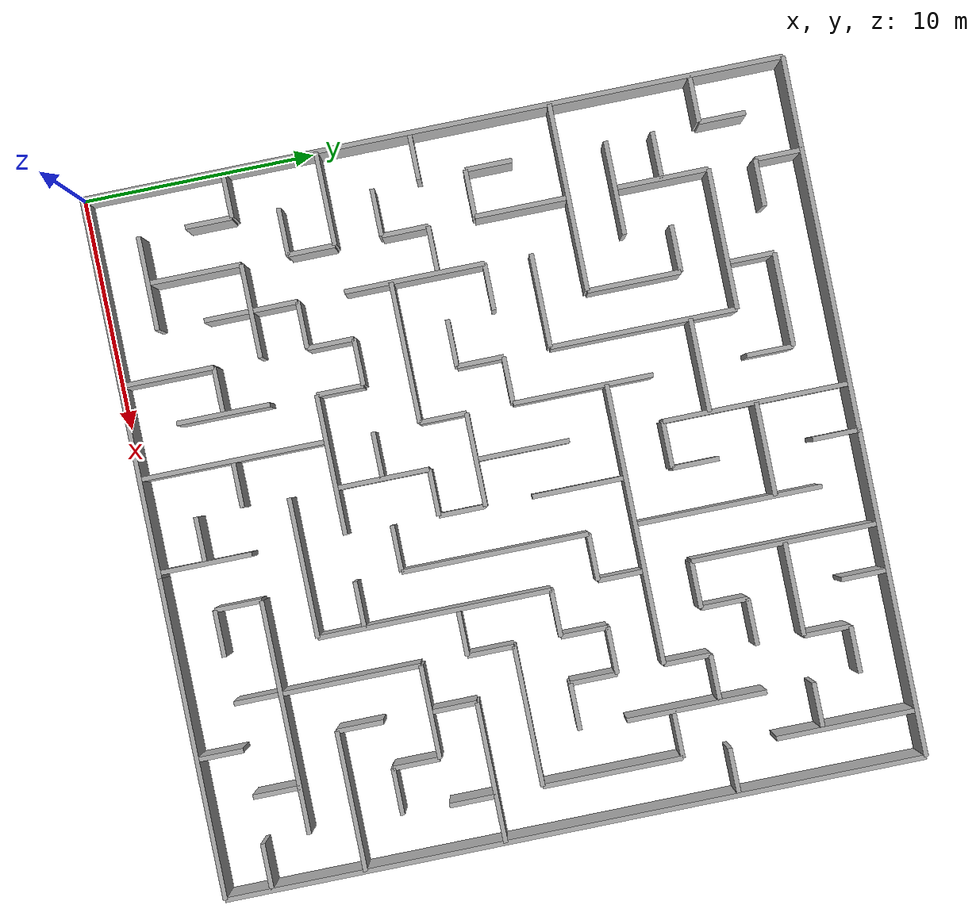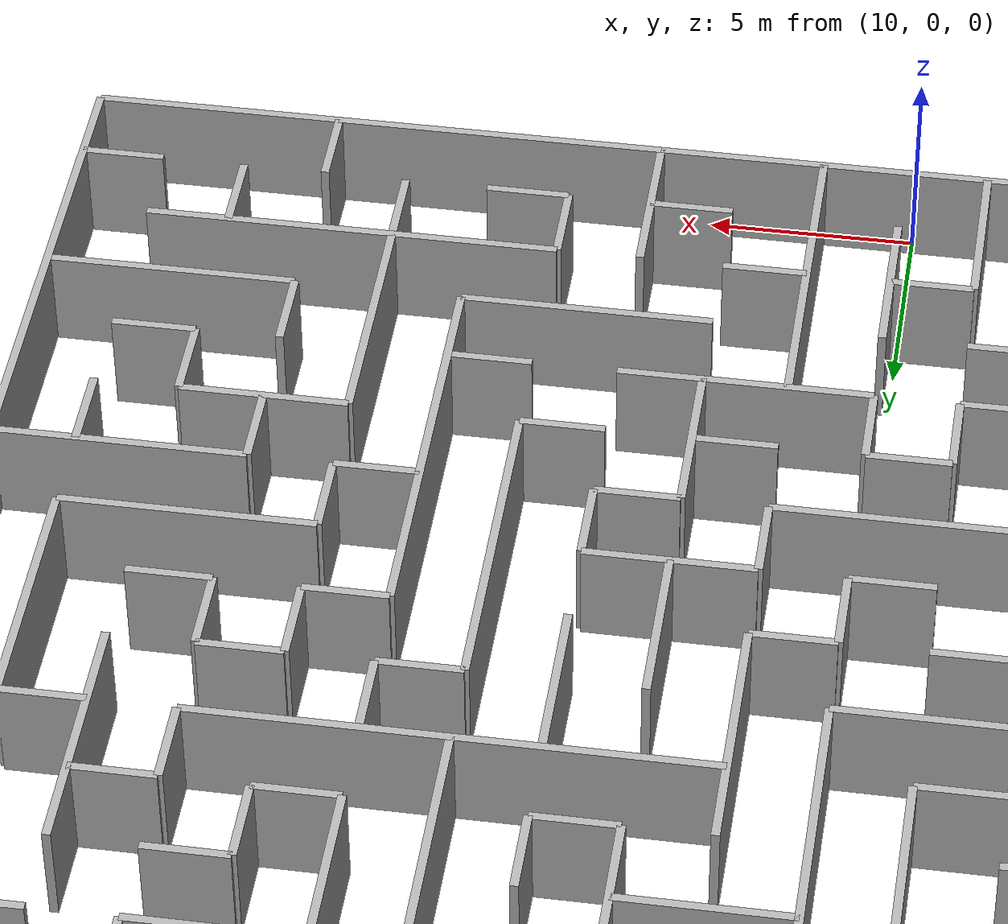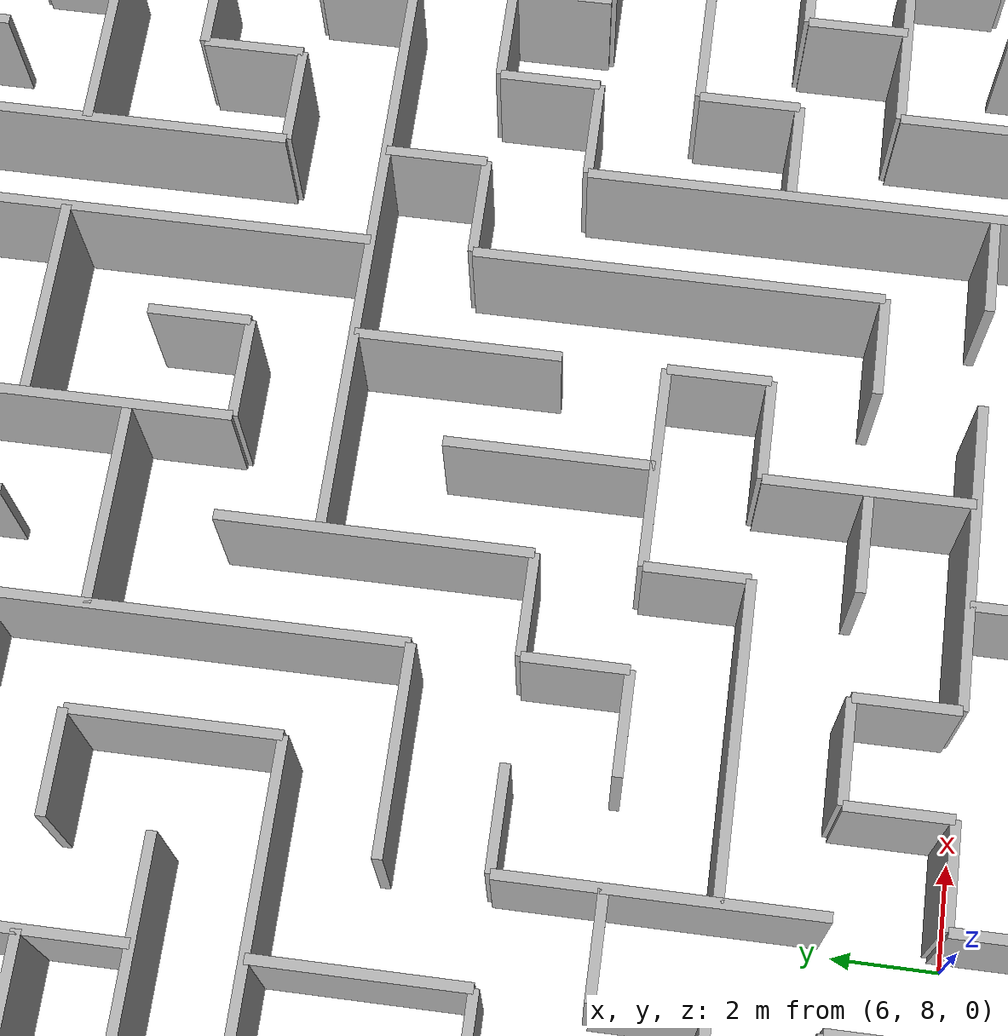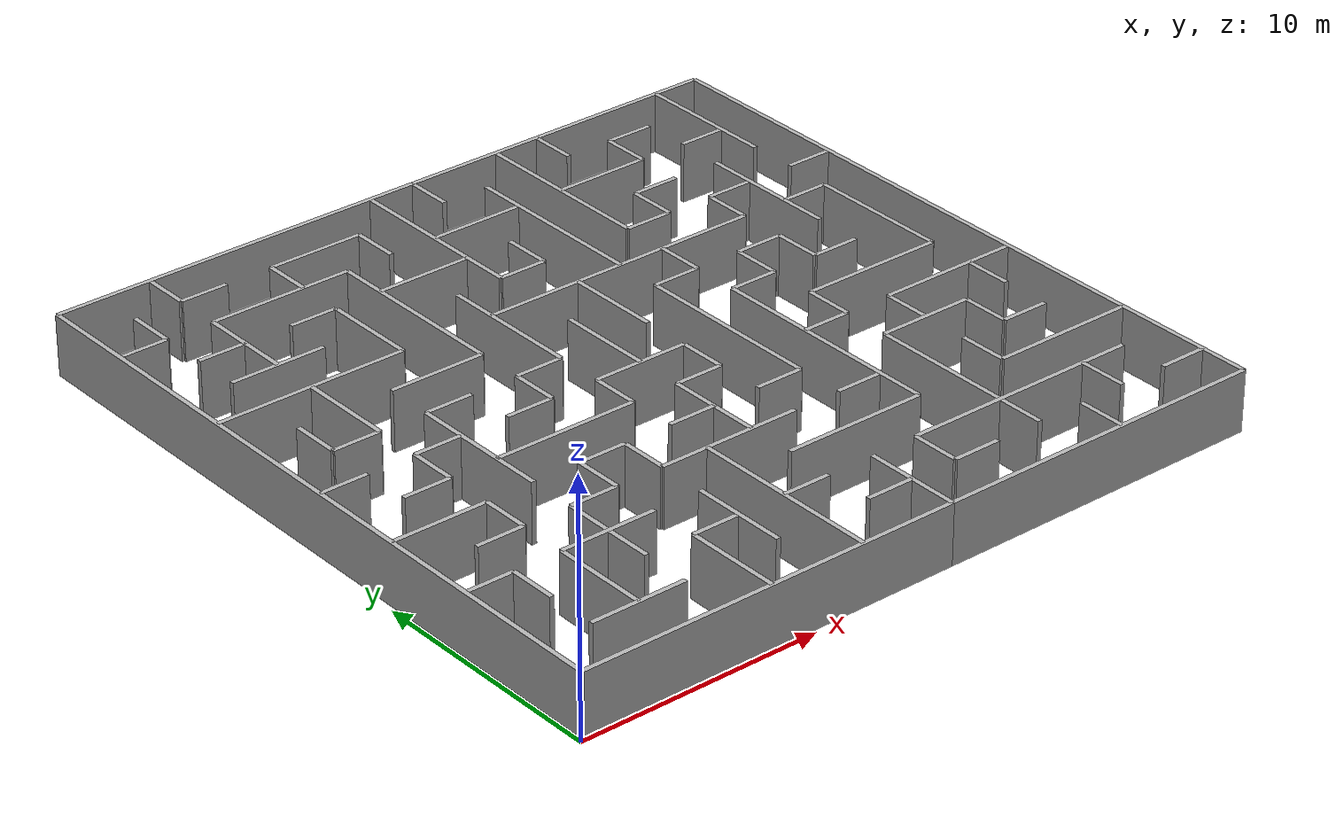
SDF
<?xml version="1.0" ?>
<sdf version="1.6">
  <model name="maze7">
    <static>true</static>
    <link name="wall_0">
      <pose>8.37898084375 0.25 1.25 0 0 0.0</pose>
      <collision name="collision">
        <geometry>
          <box><size>16.218348312499998 0.2 2.5</size></box>
        </geometry>
      </collision>
      <visual name="visual">
        <geometry>
          <box><size>16.218348312499998 0.2 2.5</size></box>
        </geometry>
        <material>
          <ambient>0.7 0.7 0.7 1</ambient>
          <diffuse>0.7 0.7 0.7 1</diffuse>
        </material>
      </visual>
    </link>
    <link name="wall_1">
      <pose>23.25 0.25 1.25 0 0 0.0</pose>
      <collision name="collision">
        <geometry>
          <box><size>14.0 0.2 2.5</size></box>
        </geometry>
      </collision>
      <visual name="visual">
        <geometry>
          <box><size>14.0 0.2 2.5</size></box>
        </geometry>
        <material>
          <ambient>0.7 0.7 0.7 1</ambient>
          <diffuse>0.7 0.7 0.7 1</diffuse>
        </material>
      </visual>
    </link>
    <link name="wall_2">
      <pose>4.25 2.25 1.25 0 0 0.0</pose>
      <collision name="collision">
        <geometry>
          <box><size>4.0 0.2 2.5</size></box>
        </geometry>
      </collision>
      <visual name="visual">
        <geometry>
          <box><size>4.0 0.2 2.5</size></box>
        </geometry>
        <material>
          <ambient>0.7 0.7 0.7 1</ambient>
          <diffuse>0.7 0.7 0.7 1</diffuse>
        </material>
      </visual>
    </link>
    <link name="wall_3">
      <pose>15.25 2.25 1.25 0 0 0.0</pose>
      <collision name="collision">
        <geometry>
          <box><size>2.0 0.2 2.5</size></box>
        </geometry>
      </collision>
      <visual name="visual">
        <geometry>
          <box><size>2.0 0.2 2.5</size></box>
        </geometry>
        <material>
          <ambient>0.7 0.7 0.7 1</ambient>
          <diffuse>0.7 0.7 0.7 1</diffuse>
        </material>
      </visual>
    </link>
    <link name="wall_4">
      <pose>19.25 2.25 1.25 0 0 0.0</pose>
      <collision name="collision">
        <geometry>
          <box><size>2.0 0.2 2.5</size></box>
        </geometry>
      </collision>
      <visual name="visual">
        <geometry>
          <box><size>2.0 0.2 2.5</size></box>
        </geometry>
        <material>
          <ambient>0.7 0.7 0.7 1</ambient>
          <diffuse>0.7 0.7 0.7 1</diffuse>
        </material>
      </visual>
    </link>
    <link name="wall_5">
      <pose>29.25 2.25 1.25 0 0 0.0</pose>
      <collision name="collision">
        <geometry>
          <box><size>2.0 0.2 2.5</size></box>
        </geometry>
      </collision>
      <visual name="visual">
        <geometry>
          <box><size>2.0 0.2 2.5</size></box>
        </geometry>
        <material>
          <ambient>0.7 0.7 0.7 1</ambient>
          <diffuse>0.7 0.7 0.7 1</diffuse>
        </material>
      </visual>
    </link>
    <link name="wall_6">
      <pose>9.25 4.25 1.25 0 0 0.0</pose>
      <collision name="collision">
        <geometry>
          <box><size>2.0 0.2 2.5</size></box>
        </geometry>
      </collision>
      <visual name="visual">
        <geometry>
          <box><size>2.0 0.2 2.5</size></box>
        </geometry>
        <material>
          <ambient>0.7 0.7 0.7 1</ambient>
          <diffuse>0.7 0.7 0.7 1</diffuse>
        </material>
      </visual>
    </link>
    <link name="wall_7">
      <pose>13.25 4.25 1.25 0 0 0.0</pose>
      <collision name="collision">
        <geometry>
          <box><size>2.0 0.2 2.5</size></box>
        </geometry>
      </collision>
      <visual name="visual">
        <geometry>
          <box><size>2.0 0.2 2.5</size></box>
        </geometry>
        <material>
          <ambient>0.7 0.7 0.7 1</ambient>
          <diffuse>0.7 0.7 0.7 1</diffuse>
        </material>
      </visual>
    </link>
    <link name="wall_8">
      <pose>23.25 4.25 1.25 0 0 0.0</pose>
      <collision name="collision">
        <geometry>
          <box><size>10.0 0.2 2.5</size></box>
        </geometry>
      </collision>
      <visual name="visual">
        <geometry>
          <box><size>10.0 0.2 2.5</size></box>
        </geometry>
        <material>
          <ambient>0.7 0.7 0.7 1</ambient>
          <diffuse>0.7 0.7 0.7 1</diffuse>
        </material>
      </visual>
    </link>
    <link name="wall_9">
      <pose>1.25 6.25 1.25 0 0 0.0</pose>
      <collision name="collision">
        <geometry>
          <box><size>2.0 0.2 2.5</size></box>
        </geometry>
      </collision>
      <visual name="visual">
        <geometry>
          <box><size>2.0 0.2 2.5</size></box>
        </geometry>
        <material>
          <ambient>0.7 0.7 0.7 1</ambient>
          <diffuse>0.7 0.7 0.7 1</diffuse>
        </material>
      </visual>
    </link>
    <link name="wall_10">
      <pose>6.25 6.25 1.25 0 0 0.0</pose>
      <collision name="collision">
        <geometry>
          <box><size>4.0 0.2 2.5</size></box>
        </geometry>
      </collision>
      <visual name="visual">
        <geometry>
          <box><size>4.0 0.2 2.5</size></box>
        </geometry>
        <material>
          <ambient>0.7 0.7 0.7 1</ambient>
          <diffuse>0.7 0.7 0.7 1</diffuse>
        </material>
      </visual>
    </link>
    <link name="wall_11">
      <pose>17.25 6.25 1.25 0 0 0.0</pose>
      <collision name="collision">
        <geometry>
          <box><size>6.0 0.2 2.5</size></box>
        </geometry>
      </collision>
      <visual name="visual">
        <geometry>
          <box><size>6.0 0.2 2.5</size></box>
        </geometry>
        <material>
          <ambient>0.7 0.7 0.7 1</ambient>
          <diffuse>0.7 0.7 0.7 1</diffuse>
        </material>
      </visual>
    </link>
    <link name="wall_12">
      <pose>27.25 6.25 1.25 0 0 0.0</pose>
      <collision name="collision">
        <geometry>
          <box><size>6.0 0.2 2.5</size></box>
        </geometry>
      </collision>
      <visual name="visual">
        <geometry>
          <box><size>6.0 0.2 2.5</size></box>
        </geometry>
        <material>
          <ambient>0.7 0.7 0.7 1</ambient>
          <diffuse>0.7 0.7 0.7 1</diffuse>
        </material>
      </visual>
    </link>
    <link name="wall_13">
      <pose>3.25 8.25 1.25 0 0 0.0</pose>
      <collision name="collision">
        <geometry>
          <box><size>2.0 0.2 2.5</size></box>
        </geometry>
      </collision>
      <visual name="visual">
        <geometry>
          <box><size>2.0 0.2 2.5</size></box>
        </geometry>
        <material>
          <ambient>0.7 0.7 0.7 1</ambient>
          <diffuse>0.7 0.7 0.7 1</diffuse>
        </material>
      </visual>
    </link>
    <link name="wall_14">
      <pose>7.25 8.25 1.25 0 0 0.0</pose>
      <collision name="collision">
        <geometry>
          <box><size>2.0 0.2 2.5</size></box>
        </geometry>
      </collision>
      <visual name="visual">
        <geometry>
          <box><size>2.0 0.2 2.5</size></box>
        </geometry>
        <material>
          <ambient>0.7 0.7 0.7 1</ambient>
          <diffuse>0.7 0.7 0.7 1</diffuse>
        </material>
      </visual>
    </link>
    <link name="wall_15">
      <pose>13.25 8.25 1.25 0 0 0.0</pose>
      <collision name="collision">
        <geometry>
          <box><size>6.0 0.2 2.5</size></box>
        </geometry>
      </collision>
      <visual name="visual">
        <geometry>
          <box><size>6.0 0.2 2.5</size></box>
        </geometry>
        <material>
          <ambient>0.7 0.7 0.7 1</ambient>
          <diffuse>0.7 0.7 0.7 1</diffuse>
        </material>
      </visual>
    </link>
    <link name="wall_16">
      <pose>19.25 8.25 1.25 0 0 0.0</pose>
      <collision name="collision">
        <geometry>
          <box><size>2.0 0.2 2.5</size></box>
        </geometry>
      </collision>
      <visual name="visual">
        <geometry>
          <box><size>2.0 0.2 2.5</size></box>
        </geometry>
        <material>
          <ambient>0.7 0.7 0.7 1</ambient>
          <diffuse>0.7 0.7 0.7 1</diffuse>
        </material>
      </visual>
    </link>
    <link name="wall_17">
      <pose>27.25 8.25 1.25 0 0 0.0</pose>
      <collision name="collision">
        <geometry>
          <box><size>2.0 0.2 2.5</size></box>
        </geometry>
      </collision>
      <visual name="visual">
        <geometry>
          <box><size>2.0 0.2 2.5</size></box>
        </geometry>
        <material>
          <ambient>0.7 0.7 0.7 1</ambient>
          <diffuse>0.7 0.7 0.7 1</diffuse>
        </material>
      </visual>
    </link>
    <link name="wall_18">
      <pose>2.25 10.25 1.25 0 0 0.0</pose>
      <collision name="collision">
        <geometry>
          <box><size>4.0 0.2 2.5</size></box>
        </geometry>
      </collision>
      <visual name="visual">
        <geometry>
          <box><size>4.0 0.2 2.5</size></box>
        </geometry>
        <material>
          <ambient>0.7 0.7 0.7 1</ambient>
          <diffuse>0.7 0.7 0.7 1</diffuse>
        </material>
      </visual>
    </link>
    <link name="wall_19">
      <pose>9.25 10.25 1.25 0 0 0.0</pose>
      <collision name="collision">
        <geometry>
          <box><size>2.0 0.2 2.5</size></box>
        </geometry>
      </collision>
      <visual name="visual">
        <geometry>
          <box><size>2.0 0.2 2.5</size></box>
        </geometry>
        <material>
          <ambient>0.7 0.7 0.7 1</ambient>
          <diffuse>0.7 0.7 0.7 1</diffuse>
        </material>
      </visual>
    </link>
    <link name="wall_20">
      <pose>13.25 10.25 1.25 0 0 0.0</pose>
      <collision name="collision">
        <geometry>
          <box><size>2.0 0.2 2.5</size></box>
        </geometry>
      </collision>
      <visual name="visual">
        <geometry>
          <box><size>2.0 0.2 2.5</size></box>
        </geometry>
        <material>
          <ambient>0.7 0.7 0.7 1</ambient>
          <diffuse>0.7 0.7 0.7 1</diffuse>
        </material>
      </visual>
    </link>
    <link name="wall_21">
      <pose>17.25 10.25 1.25 0 0 0.0</pose>
      <collision name="collision">
        <geometry>
          <box><size>2.0 0.2 2.5</size></box>
        </geometry>
      </collision>
      <visual name="visual">
        <geometry>
          <box><size>2.0 0.2 2.5</size></box>
        </geometry>
        <material>
          <ambient>0.7 0.7 0.7 1</ambient>
          <diffuse>0.7 0.7 0.7 1</diffuse>
        </material>
      </visual>
    </link>
    <link name="wall_22">
      <pose>24.25 10.25 1.25 0 0 0.0</pose>
      <collision name="collision">
        <geometry>
          <box><size>4.0 0.2 2.5</size></box>
        </geometry>
      </collision>
      <visual name="visual">
        <geometry>
          <box><size>4.0 0.2 2.5</size></box>
        </geometry>
        <material>
          <ambient>0.7 0.7 0.7 1</ambient>
          <diffuse>0.7 0.7 0.7 1</diffuse>
        </material>
      </visual>
    </link>
    <link name="wall_23">
      <pose>3.25 12.25 1.25 0 0 0.0</pose>
      <collision name="collision">
        <geometry>
          <box><size>2.0 0.2 2.5</size></box>
        </geometry>
      </collision>
      <visual name="visual">
        <geometry>
          <box><size>2.0 0.2 2.5</size></box>
        </geometry>
        <material>
          <ambient>0.7 0.7 0.7 1</ambient>
          <diffuse>0.7 0.7 0.7 1</diffuse>
        </material>
      </visual>
    </link>
    <link name="wall_24">
      <pose>9.25 12.25 1.25 0 0 0.0</pose>
      <collision name="collision">
        <geometry>
          <box><size>6.0 0.2 2.5</size></box>
        </geometry>
      </collision>
      <visual name="visual">
        <geometry>
          <box><size>6.0 0.2 2.5</size></box>
        </geometry>
        <material>
          <ambient>0.7 0.7 0.7 1</ambient>
          <diffuse>0.7 0.7 0.7 1</diffuse>
        </material>
      </visual>
    </link>
    <link name="wall_25">
      <pose>15.25 12.25 1.25 0 0 0.0</pose>
      <collision name="collision">
        <geometry>
          <box><size>2.0 0.2 2.5</size></box>
        </geometry>
      </collision>
      <visual name="visual">
        <geometry>
          <box><size>2.0 0.2 2.5</size></box>
        </geometry>
        <material>
          <ambient>0.7 0.7 0.7 1</ambient>
          <diffuse>0.7 0.7 0.7 1</diffuse>
        </material>
      </visual>
    </link>
    <link name="wall_26">
      <pose>21.25 12.25 1.25 0 0 0.0</pose>
      <collision name="collision">
        <geometry>
          <box><size>2.0 0.2 2.5</size></box>
        </geometry>
      </collision>
      <visual name="visual">
        <geometry>
          <box><size>2.0 0.2 2.5</size></box>
        </geometry>
        <material>
          <ambient>0.7 0.7 0.7 1</ambient>
          <diffuse>0.7 0.7 0.7 1</diffuse>
        </material>
      </visual>
    </link>
    <link name="wall_27">
      <pose>27.25 12.25 1.25 0 0 0.0</pose>
      <collision name="collision">
        <geometry>
          <box><size>6.0 0.2 2.5</size></box>
        </geometry>
      </collision>
      <visual name="visual">
        <geometry>
          <box><size>6.0 0.2 2.5</size></box>
        </geometry>
        <material>
          <ambient>0.7 0.7 0.7 1</ambient>
          <diffuse>0.7 0.7 0.7 1</diffuse>
        </material>
      </visual>
    </link>
    <link name="wall_28">
      <pose>1.25 14.25 1.25 0 0 0.0</pose>
      <collision name="collision">
        <geometry>
          <box><size>2.0 0.2 2.5</size></box>
        </geometry>
      </collision>
      <visual name="visual">
        <geometry>
          <box><size>2.0 0.2 2.5</size></box>
        </geometry>
        <material>
          <ambient>0.7 0.7 0.7 1</ambient>
          <diffuse>0.7 0.7 0.7 1</diffuse>
        </material>
      </visual>
    </link>
    <link name="wall_29">
      <pose>5.25 14.25 1.25 0 0 0.0</pose>
      <collision name="collision">
        <geometry>
          <box><size>2.0 0.2 2.5</size></box>
        </geometry>
      </collision>
      <visual name="visual">
        <geometry>
          <box><size>2.0 0.2 2.5</size></box>
        </geometry>
        <material>
          <ambient>0.7 0.7 0.7 1</ambient>
          <diffuse>0.7 0.7 0.7 1</diffuse>
        </material>
      </visual>
    </link>
    <link name="wall_30">
      <pose>9.25 14.25 1.25 0 0 0.0</pose>
      <collision name="collision">
        <geometry>
          <box><size>2.0 0.2 2.5</size></box>
        </geometry>
      </collision>
      <visual name="visual">
        <geometry>
          <box><size>2.0 0.2 2.5</size></box>
        </geometry>
        <material>
          <ambient>0.7 0.7 0.7 1</ambient>
          <diffuse>0.7 0.7 0.7 1</diffuse>
        </material>
      </visual>
    </link>
    <link name="wall_31">
      <pose>14.25 14.25 1.25 0 0 0.0</pose>
      <collision name="collision">
        <geometry>
          <box><size>4.0 0.2 2.5</size></box>
        </geometry>
      </collision>
      <visual name="visual">
        <geometry>
          <box><size>4.0 0.2 2.5</size></box>
        </geometry>
        <material>
          <ambient>0.7 0.7 0.7 1</ambient>
          <diffuse>0.7 0.7 0.7 1</diffuse>
        </material>
      </visual>
    </link>
    <link name="wall_32">
      <pose>25.25 14.25 1.25 0 0 0.0</pose>
      <collision name="collision">
        <geometry>
          <box><size>6.0 0.2 2.5</size></box>
        </geometry>
      </collision>
      <visual name="visual">
        <geometry>
          <box><size>6.0 0.2 2.5</size></box>
        </geometry>
        <material>
          <ambient>0.7 0.7 0.7 1</ambient>
          <diffuse>0.7 0.7 0.7 1</diffuse>
        </material>
      </visual>
    </link>
    <link name="wall_33">
      <pose>3.25 16.25 1.25 0 0 0.0</pose>
      <collision name="collision">
        <geometry>
          <box><size>2.0 0.2 2.5</size></box>
        </geometry>
      </collision>
      <visual name="visual">
        <geometry>
          <box><size>2.0 0.2 2.5</size></box>
        </geometry>
        <material>
          <ambient>0.7 0.7 0.7 1</ambient>
          <diffuse>0.7 0.7 0.7 1</diffuse>
        </material>
      </visual>
    </link>
    <link name="wall_34">
      <pose>7.25 16.25 1.25 0 0 0.0</pose>
      <collision name="collision">
        <geometry>
          <box><size>2.0 0.2 2.5</size></box>
        </geometry>
      </collision>
      <visual name="visual">
        <geometry>
          <box><size>2.0 0.2 2.5</size></box>
        </geometry>
        <material>
          <ambient>0.7 0.7 0.7 1</ambient>
          <diffuse>0.7 0.7 0.7 1</diffuse>
        </material>
      </visual>
    </link>
    <link name="wall_35">
      <pose>11.25 16.25 1.25 0 0 0.0</pose>
      <collision name="collision">
        <geometry>
          <box><size>2.0 0.2 2.5</size></box>
        </geometry>
      </collision>
      <visual name="visual">
        <geometry>
          <box><size>2.0 0.2 2.5</size></box>
        </geometry>
        <material>
          <ambient>0.7 0.7 0.7 1</ambient>
          <diffuse>0.7 0.7 0.7 1</diffuse>
        </material>
      </visual>
    </link>
    <link name="wall_36">
      <pose>21.25 16.25 1.25 0 0 0.0</pose>
      <collision name="collision">
        <geometry>
          <box><size>2.0 0.2 2.5</size></box>
        </geometry>
      </collision>
      <visual name="visual">
        <geometry>
          <box><size>2.0 0.2 2.5</size></box>
        </geometry>
        <material>
          <ambient>0.7 0.7 0.7 1</ambient>
          <diffuse>0.7 0.7 0.7 1</diffuse>
        </material>
      </visual>
    </link>
    <link name="wall_37">
      <pose>25.25 16.25 1.25 0 0 0.0</pose>
      <collision name="collision">
        <geometry>
          <box><size>2.0 0.2 2.5</size></box>
        </geometry>
      </collision>
      <visual name="visual">
        <geometry>
          <box><size>2.0 0.2 2.5</size></box>
        </geometry>
        <material>
          <ambient>0.7 0.7 0.7 1</ambient>
          <diffuse>0.7 0.7 0.7 1</diffuse>
        </material>
      </visual>
    </link>
    <link name="wall_38">
      <pose>8.25 18.25 1.25 0 0 0.0</pose>
      <collision name="collision">
        <geometry>
          <box><size>4.0 0.2 2.5</size></box>
        </geometry>
      </collision>
      <visual name="visual">
        <geometry>
          <box><size>4.0 0.2 2.5</size></box>
        </geometry>
        <material>
          <ambient>0.7 0.7 0.7 1</ambient>
          <diffuse>0.7 0.7 0.7 1</diffuse>
        </material>
      </visual>
    </link>
    <link name="wall_39">
      <pose>19.25 18.25 1.25 0 0 0.0</pose>
      <collision name="collision">
        <geometry>
          <box><size>2.0 0.2 2.5</size></box>
        </geometry>
      </collision>
      <visual name="visual">
        <geometry>
          <box><size>2.0 0.2 2.5</size></box>
        </geometry>
        <material>
          <ambient>0.7 0.7 0.7 1</ambient>
          <diffuse>0.7 0.7 0.7 1</diffuse>
        </material>
      </visual>
    </link>
    <link name="wall_40">
      <pose>23.25 18.25 1.25 0 0 0.0</pose>
      <collision name="collision">
        <geometry>
          <box><size>2.0 0.2 2.5</size></box>
        </geometry>
      </collision>
      <visual name="visual">
        <geometry>
          <box><size>2.0 0.2 2.5</size></box>
        </geometry>
        <material>
          <ambient>0.7 0.7 0.7 1</ambient>
          <diffuse>0.7 0.7 0.7 1</diffuse>
        </material>
      </visual>
    </link>
    <link name="wall_41">
      <pose>4.25 20.25 1.25 0 0 0.0</pose>
      <collision name="collision">
        <geometry>
          <box><size>8.0 0.2 2.5</size></box>
        </geometry>
      </collision>
      <visual name="visual">
        <geometry>
          <box><size>8.0 0.2 2.5</size></box>
        </geometry>
        <material>
          <ambient>0.7 0.7 0.7 1</ambient>
          <diffuse>0.7 0.7 0.7 1</diffuse>
        </material>
      </visual>
    </link>
    <link name="wall_42">
      <pose>18.25 20.25 1.25 0 0 0.0</pose>
      <collision name="collision">
        <geometry>
          <box><size>12.0 0.2 2.5</size></box>
        </geometry>
      </collision>
      <visual name="visual">
        <geometry>
          <box><size>12.0 0.2 2.5</size></box>
        </geometry>
        <material>
          <ambient>0.7 0.7 0.7 1</ambient>
          <diffuse>0.7 0.7 0.7 1</diffuse>
        </material>
      </visual>
    </link>
    <link name="wall_43">
      <pose>27.25 20.25 1.25 0 0 0.0</pose>
      <collision name="collision">
        <geometry>
          <box><size>2.0 0.2 2.5</size></box>
        </geometry>
      </collision>
      <visual name="visual">
        <geometry>
          <box><size>2.0 0.2 2.5</size></box>
        </geometry>
        <material>
          <ambient>0.7 0.7 0.7 1</ambient>
          <diffuse>0.7 0.7 0.7 1</diffuse>
        </material>
      </visual>
    </link>
    <link name="wall_44">
      <pose>4.25 22.25 1.25 0 0 0.0</pose>
      <collision name="collision">
        <geometry>
          <box><size>4.0 0.2 2.5</size></box>
        </geometry>
      </collision>
      <visual name="visual">
        <geometry>
          <box><size>4.0 0.2 2.5</size></box>
        </geometry>
        <material>
          <ambient>0.7 0.7 0.7 1</ambient>
          <diffuse>0.7 0.7 0.7 1</diffuse>
        </material>
      </visual>
    </link>
    <link name="wall_45">
      <pose>15.25 22.25 1.25 0 0 0.0</pose>
      <collision name="collision">
        <geometry>
          <box><size>2.0 0.2 2.5</size></box>
        </geometry>
      </collision>
      <visual name="visual">
        <geometry>
          <box><size>2.0 0.2 2.5</size></box>
        </geometry>
        <material>
          <ambient>0.7 0.7 0.7 1</ambient>
          <diffuse>0.7 0.7 0.7 1</diffuse>
        </material>
      </visual>
    </link>
    <link name="wall_46">
      <pose>21.25 22.25 1.25 0 0 0.0</pose>
      <collision name="collision">
        <geometry>
          <box><size>2.0 0.2 2.5</size></box>
        </geometry>
      </collision>
      <visual name="visual">
        <geometry>
          <box><size>2.0 0.2 2.5</size></box>
        </geometry>
        <material>
          <ambient>0.7 0.7 0.7 1</ambient>
          <diffuse>0.7 0.7 0.7 1</diffuse>
        </material>
      </visual>
    </link>
    <link name="wall_47">
      <pose>25.25 22.25 1.25 0 0 0.0</pose>
      <collision name="collision">
        <geometry>
          <box><size>2.0 0.2 2.5</size></box>
        </geometry>
      </collision>
      <visual name="visual">
        <geometry>
          <box><size>2.0 0.2 2.5</size></box>
        </geometry>
        <material>
          <ambient>0.7 0.7 0.7 1</ambient>
          <diffuse>0.7 0.7 0.7 1</diffuse>
        </material>
      </visual>
    </link>
    <link name="wall_48">
      <pose>29.25 22.25 1.25 0 0 0.0</pose>
      <collision name="collision">
        <geometry>
          <box><size>2.0 0.2 2.5</size></box>
        </geometry>
      </collision>
      <visual name="visual">
        <geometry>
          <box><size>2.0 0.2 2.5</size></box>
        </geometry>
        <material>
          <ambient>0.7 0.7 0.7 1</ambient>
          <diffuse>0.7 0.7 0.7 1</diffuse>
        </material>
      </visual>
    </link>
    <link name="wall_49">
      <pose>3.25 24.25 1.25 0 0 0.0</pose>
      <collision name="collision">
        <geometry>
          <box><size>2.0 0.2 2.5</size></box>
        </geometry>
      </collision>
      <visual name="visual">
        <geometry>
          <box><size>2.0 0.2 2.5</size></box>
        </geometry>
        <material>
          <ambient>0.7 0.7 0.7 1</ambient>
          <diffuse>0.7 0.7 0.7 1</diffuse>
        </material>
      </visual>
    </link>
    <link name="wall_50">
      <pose>7.25 24.25 1.25 0 0 0.0</pose>
      <collision name="collision">
        <geometry>
          <box><size>2.0 0.2 2.5</size></box>
        </geometry>
      </collision>
      <visual name="visual">
        <geometry>
          <box><size>2.0 0.2 2.5</size></box>
        </geometry>
        <material>
          <ambient>0.7 0.7 0.7 1</ambient>
          <diffuse>0.7 0.7 0.7 1</diffuse>
        </material>
      </visual>
    </link>
    <link name="wall_51">
      <pose>12.25 24.25 1.25 0 0 0.0</pose>
      <collision name="collision">
        <geometry>
          <box><size>4.0 0.2 2.5</size></box>
        </geometry>
      </collision>
      <visual name="visual">
        <geometry>
          <box><size>4.0 0.2 2.5</size></box>
        </geometry>
        <material>
          <ambient>0.7 0.7 0.7 1</ambient>
          <diffuse>0.7 0.7 0.7 1</diffuse>
        </material>
      </visual>
    </link>
    <link name="wall_52">
      <pose>23.25 24.25 1.25 0 0 0.0</pose>
      <collision name="collision">
        <geometry>
          <box><size>2.0 0.2 2.5</size></box>
        </geometry>
      </collision>
      <visual name="visual">
        <geometry>
          <box><size>2.0 0.2 2.5</size></box>
        </geometry>
        <material>
          <ambient>0.7 0.7 0.7 1</ambient>
          <diffuse>0.7 0.7 0.7 1</diffuse>
        </material>
      </visual>
    </link>
    <link name="wall_53">
      <pose>1.25 26.25 1.25 0 0 0.0</pose>
      <collision name="collision">
        <geometry>
          <box><size>2.0 0.2 2.5</size></box>
        </geometry>
      </collision>
      <visual name="visual">
        <geometry>
          <box><size>2.0 0.2 2.5</size></box>
        </geometry>
        <material>
          <ambient>0.7 0.7 0.7 1</ambient>
          <diffuse>0.7 0.7 0.7 1</diffuse>
        </material>
      </visual>
    </link>
    <link name="wall_54">
      <pose>7.25 26.25 1.25 0 0 0.0</pose>
      <collision name="collision">
        <geometry>
          <box><size>6.0 0.2 2.5</size></box>
        </geometry>
      </collision>
      <visual name="visual">
        <geometry>
          <box><size>6.0 0.2 2.5</size></box>
        </geometry>
        <material>
          <ambient>0.7 0.7 0.7 1</ambient>
          <diffuse>0.7 0.7 0.7 1</diffuse>
        </material>
      </visual>
    </link>
    <link name="wall_55">
      <pose>16.25 26.25 1.25 0 0 0.0</pose>
      <collision name="collision">
        <geometry>
          <box><size>4.0 0.2 2.5</size></box>
        </geometry>
      </collision>
      <visual name="visual">
        <geometry>
          <box><size>4.0 0.2 2.5</size></box>
        </geometry>
        <material>
          <ambient>0.7 0.7 0.7 1</ambient>
          <diffuse>0.7 0.7 0.7 1</diffuse>
        </material>
      </visual>
    </link>
    <link name="wall_56">
      <pose>22.25 26.25 1.25 0 0 0.0</pose>
      <collision name="collision">
        <geometry>
          <box><size>4.0 0.2 2.5</size></box>
        </geometry>
      </collision>
      <visual name="visual">
        <geometry>
          <box><size>4.0 0.2 2.5</size></box>
        </geometry>
        <material>
          <ambient>0.7 0.7 0.7 1</ambient>
          <diffuse>0.7 0.7 0.7 1</diffuse>
        </material>
      </visual>
    </link>
    <link name="wall_57">
      <pose>27.25 26.25 1.25 0 0 0.0</pose>
      <collision name="collision">
        <geometry>
          <box><size>2.0 0.2 2.5</size></box>
        </geometry>
      </collision>
      <visual name="visual">
        <geometry>
          <box><size>2.0 0.2 2.5</size></box>
        </geometry>
        <material>
          <ambient>0.7 0.7 0.7 1</ambient>
          <diffuse>0.7 0.7 0.7 1</diffuse>
        </material>
      </visual>
    </link>
    <link name="wall_58">
      <pose>5.25 28.25 1.25 0 0 0.0</pose>
      <collision name="collision">
        <geometry>
          <box><size>2.0 0.2 2.5</size></box>
        </geometry>
      </collision>
      <visual name="visual">
        <geometry>
          <box><size>2.0 0.2 2.5</size></box>
        </geometry>
        <material>
          <ambient>0.7 0.7 0.7 1</ambient>
          <diffuse>0.7 0.7 0.7 1</diffuse>
        </material>
      </visual>
    </link>
    <link name="wall_59">
      <pose>10.25 28.25 1.25 0 0 0.0</pose>
      <collision name="collision">
        <geometry>
          <box><size>4.0 0.2 2.5</size></box>
        </geometry>
      </collision>
      <visual name="visual">
        <geometry>
          <box><size>4.0 0.2 2.5</size></box>
        </geometry>
        <material>
          <ambient>0.7 0.7 0.7 1</ambient>
          <diffuse>0.7 0.7 0.7 1</diffuse>
        </material>
      </visual>
    </link>
    <link name="wall_60">
      <pose>25.25 28.25 1.25 0 0 0.0</pose>
      <collision name="collision">
        <geometry>
          <box><size>2.0 0.2 2.5</size></box>
        </geometry>
      </collision>
      <visual name="visual">
        <geometry>
          <box><size>2.0 0.2 2.5</size></box>
        </geometry>
        <material>
          <ambient>0.7 0.7 0.7 1</ambient>
          <diffuse>0.7 0.7 0.7 1</diffuse>
        </material>
      </visual>
    </link>
    <link name="wall_61">
      <pose>8.25 30.25 1.25 0 0 0.0</pose>
      <collision name="collision">
        <geometry>
          <box><size>16.0 0.2 2.5</size></box>
        </geometry>
      </collision>
      <visual name="visual">
        <geometry>
          <box><size>16.0 0.2 2.5</size></box>
        </geometry>
        <material>
          <ambient>0.7 0.7 0.7 1</ambient>
          <diffuse>0.7 0.7 0.7 1</diffuse>
        </material>
      </visual>
    </link>
    <link name="wall_62">
      <pose>23.25 30.25 1.25 0 0 0.0</pose>
      <collision name="collision">
        <geometry>
          <box><size>14.0 0.2 2.5</size></box>
        </geometry>
      </collision>
      <visual name="visual">
        <geometry>
          <box><size>14.0 0.2 2.5</size></box>
        </geometry>
        <material>
          <ambient>0.7 0.7 0.7 1</ambient>
          <diffuse>0.7 0.7 0.7 1</diffuse>
        </material>
      </visual>
    </link>
    <link name="wall_63">
      <pose>0.25 15.25 1.25 0 0 1.5707963267948966</pose>
      <collision name="collision">
        <geometry>
          <box><size>30.0 0.2 2.5</size></box>
        </geometry>
      </collision>
      <visual name="visual">
        <geometry>
          <box><size>30.0 0.2 2.5</size></box>
        </geometry>
        <material>
          <ambient>0.7 0.7 0.7 1</ambient>
          <diffuse>0.7 0.7 0.7 1</diffuse>
        </material>
      </visual>
    </link>
    <link name="wall_64">
      <pose>2.25 5.25 1.25 0 0 1.5707963267948966</pose>
      <collision name="collision">
        <geometry>
          <box><size>2.0 0.2 2.5</size></box>
        </geometry>
      </collision>
      <visual name="visual">
        <geometry>
          <box><size>2.0 0.2 2.5</size></box>
        </geometry>
        <material>
          <ambient>0.7 0.7 0.7 1</ambient>
          <diffuse>0.7 0.7 0.7 1</diffuse>
        </material>
      </visual>
    </link>
    <link name="wall_65">
      <pose>2.25 17.25 1.25 0 0 1.5707963267948966</pose>
      <collision name="collision">
        <geometry>
          <box><size>2.0 0.2 2.5</size></box>
        </geometry>
      </collision>
      <visual name="visual">
        <geometry>
          <box><size>2.0 0.2 2.5</size></box>
        </geometry>
        <material>
          <ambient>0.7 0.7 0.7 1</ambient>
          <diffuse>0.7 0.7 0.7 1</diffuse>
        </material>
      </visual>
    </link>
    <link name="wall_66">
      <pose>2.25 27.25 1.25 0 0 1.5707963267948966</pose>
      <collision name="collision">
        <geometry>
          <box><size>2.0 0.2 2.5</size></box>
        </geometry>
      </collision>
      <visual name="visual">
        <geometry>
          <box><size>2.0 0.2 2.5</size></box>
        </geometry>
        <material>
          <ambient>0.7 0.7 0.7 1</ambient>
          <diffuse>0.7 0.7 0.7 1</diffuse>
        </material>
      </visual>
    </link>
    <link name="wall_67">
      <pose>4.25 4.25 1.25 0 0 1.5707963267948966</pose>
      <collision name="collision">
        <geometry>
          <box><size>4.0 0.2 2.5</size></box>
        </geometry>
      </collision>
      <visual name="visual">
        <geometry>
          <box><size>4.0 0.2 2.5</size></box>
        </geometry>
        <material>
          <ambient>0.7 0.7 0.7 1</ambient>
          <diffuse>0.7 0.7 0.7 1</diffuse>
        </material>
      </visual>
    </link>
    <link name="wall_68">
      <pose>4.25 9.25 1.25 0 0 1.5707963267948966</pose>
      <collision name="collision">
        <geometry>
          <box><size>2.0 0.2 2.5</size></box>
        </geometry>
      </collision>
      <visual name="visual">
        <geometry>
          <box><size>2.0 0.2 2.5</size></box>
        </geometry>
        <material>
          <ambient>0.7 0.7 0.7 1</ambient>
          <diffuse>0.7 0.7 0.7 1</diffuse>
        </material>
      </visual>
    </link>
    <link name="wall_69">
      <pose>4.25 13.25 1.25 0 0 1.5707963267948966</pose>
      <collision name="collision">
        <geometry>
          <box><size>2.0 0.2 2.5</size></box>
        </geometry>
      </collision>
      <visual name="visual">
        <geometry>
          <box><size>2.0 0.2 2.5</size></box>
        </geometry>
        <material>
          <ambient>0.7 0.7 0.7 1</ambient>
          <diffuse>0.7 0.7 0.7 1</diffuse>
        </material>
      </visual>
    </link>
    <link name="wall_70">
      <pose>4.25 18.25 1.25 0 0 1.5707963267948966</pose>
      <collision name="collision">
        <geometry>
          <box><size>4.0 0.2 2.5</size></box>
        </geometry>
      </collision>
      <visual name="visual">
        <geometry>
          <box><size>4.0 0.2 2.5</size></box>
        </geometry>
        <material>
          <ambient>0.7 0.7 0.7 1</ambient>
          <diffuse>0.7 0.7 0.7 1</diffuse>
        </material>
      </visual>
    </link>
    <link name="wall_71">
      <pose>4.25 24.25 1.25 0 0 1.5707963267948966</pose>
      <collision name="collision">
        <geometry>
          <box><size>4.0 0.2 2.5</size></box>
        </geometry>
      </collision>
      <visual name="visual">
        <geometry>
          <box><size>4.0 0.2 2.5</size></box>
        </geometry>
        <material>
          <ambient>0.7 0.7 0.7 1</ambient>
          <diffuse>0.7 0.7 0.7 1</diffuse>
        </material>
      </visual>
    </link>
    <link name="wall_72">
      <pose>4.25 29.25 1.25 0 0 1.5707963267948966</pose>
      <collision name="collision">
        <geometry>
          <box><size>2.0 0.2 2.5</size></box>
        </geometry>
      </collision>
      <visual name="visual">
        <geometry>
          <box><size>2.0 0.2 2.5</size></box>
        </geometry>
        <material>
          <ambient>0.7 0.7 0.7 1</ambient>
          <diffuse>0.7 0.7 0.7 1</diffuse>
        </material>
      </visual>
    </link>
    <link name="wall_73">
      <pose>6.25 6.25 1.25 0 0 1.5707963267948966</pose>
      <collision name="collision">
        <geometry>
          <box><size>4.0 0.2 2.5</size></box>
        </geometry>
      </collision>
      <visual name="visual">
        <geometry>
          <box><size>4.0 0.2 2.5</size></box>
        </geometry>
        <material>
          <ambient>0.7 0.7 0.7 1</ambient>
          <diffuse>0.7 0.7 0.7 1</diffuse>
        </material>
      </visual>
    </link>
    <link name="wall_74">
      <pose>6.25 13.25 1.25 0 0 1.5707963267948966</pose>
      <collision name="collision">
        <geometry>
          <box><size>6.0 0.2 2.5</size></box>
        </geometry>
      </collision>
      <visual name="visual">
        <geometry>
          <box><size>6.0 0.2 2.5</size></box>
        </geometry>
        <material>
          <ambient>0.7 0.7 0.7 1</ambient>
          <diffuse>0.7 0.7 0.7 1</diffuse>
        </material>
      </visual>
    </link>
    <link name="wall_75">
      <pose>8.25 2.25 1.25 0 0 1.5707963267948966</pose>
      <collision name="collision">
        <geometry>
          <box><size>4.0 0.2 2.5</size></box>
        </geometry>
      </collision>
      <visual name="visual">
        <geometry>
          <box><size>4.0 0.2 2.5</size></box>
        </geometry>
        <material>
          <ambient>0.7 0.7 0.7 1</ambient>
          <diffuse>0.7 0.7 0.7 1</diffuse>
        </material>
      </visual>
    </link>
    <link name="wall_76">
      <pose>8.25 9.25 1.25 0 0 1.5707963267948966</pose>
      <collision name="collision">
        <geometry>
          <box><size>2.0 0.2 2.5</size></box>
        </geometry>
      </collision>
      <visual name="visual">
        <geometry>
          <box><size>2.0 0.2 2.5</size></box>
        </geometry>
        <material>
          <ambient>0.7 0.7 0.7 1</ambient>
          <diffuse>0.7 0.7 0.7 1</diffuse>
        </material>
      </visual>
    </link>
    <link name="wall_77">
      <pose>8.25 22.25 1.25 0 0 1.5707963267948966</pose>
      <collision name="collision">
        <geometry>
          <box><size>4.0 0.2 2.5</size></box>
        </geometry>
      </collision>
      <visual name="visual">
        <geometry>
          <box><size>4.0 0.2 2.5</size></box>
        </geometry>
        <material>
          <ambient>0.7 0.7 0.7 1</ambient>
          <diffuse>0.7 0.7 0.7 1</diffuse>
        </material>
      </visual>
    </link>
    <link name="wall_78">
      <pose>8.25 27.25 1.25 0 0 1.5707963267948966</pose>
      <collision name="collision">
        <geometry>
          <box><size>2.0 0.2 2.5</size></box>
        </geometry>
      </collision>
      <visual name="visual">
        <geometry>
          <box><size>2.0 0.2 2.5</size></box>
        </geometry>
        <material>
          <ambient>0.7 0.7 0.7 1</ambient>
          <diffuse>0.7 0.7 0.7 1</diffuse>
        </material>
      </visual>
    </link>
    <link name="wall_79">
      <pose>10.25 4.25 1.25 0 0 1.5707963267948966</pose>
      <collision name="collision">
        <geometry>
          <box><size>4.0 0.2 2.5</size></box>
        </geometry>
      </collision>
      <visual name="visual">
        <geometry>
          <box><size>4.0 0.2 2.5</size></box>
        </geometry>
        <material>
          <ambient>0.7 0.7 0.7 1</ambient>
          <diffuse>0.7 0.7 0.7 1</diffuse>
        </material>
      </visual>
    </link>
    <link name="wall_80">
      <pose>10.25 9.25 1.25 0 0 1.5707963267948966</pose>
      <collision name="collision">
        <geometry>
          <box><size>2.0 0.2 2.5</size></box>
        </geometry>
      </collision>
      <visual name="visual">
        <geometry>
          <box><size>2.0 0.2 2.5</size></box>
        </geometry>
        <material>
          <ambient>0.7 0.7 0.7 1</ambient>
          <diffuse>0.7 0.7 0.7 1</diffuse>
        </material>
      </visual>
    </link>
    <link name="wall_81">
      <pose>10.25 15.25 1.25 0 0 1.5707963267948966</pose>
      <collision name="collision">
        <geometry>
          <box><size>2.0 0.2 2.5</size></box>
        </geometry>
      </collision>
      <visual name="visual">
        <geometry>
          <box><size>2.0 0.2 2.5</size></box>
        </geometry>
        <material>
          <ambient>0.7 0.7 0.7 1</ambient>
          <diffuse>0.7 0.7 0.7 1</diffuse>
        </material>
      </visual>
    </link>
    <link name="wall_82">
      <pose>10.25 22.25 1.25 0 0 1.5707963267948966</pose>
      <collision name="collision">
        <geometry>
          <box><size>8.0 0.2 2.5</size></box>
        </geometry>
      </collision>
      <visual name="visual">
        <geometry>
          <box><size>8.0 0.2 2.5</size></box>
        </geometry>
        <material>
          <ambient>0.7 0.7 0.7 1</ambient>
          <diffuse>0.7 0.7 0.7 1</diffuse>
        </material>
      </visual>
    </link>
    <link name="wall_83">
      <pose>12.25 4.25 1.25 0 0 1.5707963267948966</pose>
      <collision name="collision">
        <geometry>
          <box><size>8.0 0.2 2.5</size></box>
        </geometry>
      </collision>
      <visual name="visual">
        <geometry>
          <box><size>8.0 0.2 2.5</size></box>
        </geometry>
        <material>
          <ambient>0.7 0.7 0.7 1</ambient>
          <diffuse>0.7 0.7 0.7 1</diffuse>
        </material>
      </visual>
    </link>
    <link name="wall_84">
      <pose>12.25 13.25 1.25 0 0 1.5707963267948966</pose>
      <collision name="collision">
        <geometry>
          <box><size>2.0 0.2 2.5</size></box>
        </geometry>
      </collision>
      <visual name="visual">
        <geometry>
          <box><size>2.0 0.2 2.5</size></box>
        </geometry>
        <material>
          <ambient>0.7 0.7 0.7 1</ambient>
          <diffuse>0.7 0.7 0.7 1</diffuse>
        </material>
      </visual>
    </link>
    <link name="wall_85">
      <pose>12.25 19.25 1.25 0 0 1.5707963267948966</pose>
      <collision name="collision">
        <geometry>
          <box><size>6.0 0.2 2.5</size></box>
        </geometry>
      </collision>
      <visual name="visual">
        <geometry>
          <box><size>6.0 0.2 2.5</size></box>
        </geometry>
        <material>
          <ambient>0.7 0.7 0.7 1</ambient>
          <diffuse>0.7 0.7 0.7 1</diffuse>
        </material>
      </visual>
    </link>
    <link name="wall_86">
      <pose>12.25 27.25 1.25 0 0 1.5707963267948966</pose>
      <collision name="collision">
        <geometry>
          <box><size>2.0 0.2 2.5</size></box>
        </geometry>
      </collision>
      <visual name="visual">
        <geometry>
          <box><size>2.0 0.2 2.5</size></box>
        </geometry>
        <material>
          <ambient>0.7 0.7 0.7 1</ambient>
          <diffuse>0.7 0.7 0.7 1</diffuse>
        </material>
      </visual>
    </link>
    <link name="wall_87">
      <pose>14.25 10.25 1.25 0 0 1.5707963267948966</pose>
      <collision name="collision">
        <geometry>
          <box><size>4.0 0.2 2.5</size></box>
        </geometry>
      </collision>
      <visual name="visual">
        <geometry>
          <box><size>4.0 0.2 2.5</size></box>
        </geometry>
        <material>
          <ambient>0.7 0.7 0.7 1</ambient>
          <diffuse>0.7 0.7 0.7 1</diffuse>
        </material>
      </visual>
    </link>
    <link name="wall_88">
      <pose>14.25 16.25 1.25 0 0 1.5707963267948966</pose>
      <collision name="collision">
        <geometry>
          <box><size>4.0 0.2 2.5</size></box>
        </geometry>
      </collision>
      <visual name="visual">
        <geometry>
          <box><size>4.0 0.2 2.5</size></box>
        </geometry>
        <material>
          <ambient>0.7 0.7 0.7 1</ambient>
          <diffuse>0.7 0.7 0.7 1</diffuse>
        </material>
      </visual>
    </link>
    <link name="wall_89">
      <pose>14.25 26.25 1.25 0 0 1.5707963267948966</pose>
      <collision name="collision">
        <geometry>
          <box><size>8.0 0.2 2.5</size></box>
        </geometry>
      </collision>
      <visual name="visual">
        <geometry>
          <box><size>8.0 0.2 2.5</size></box>
        </geometry>
        <material>
          <ambient>0.7 0.7 0.7 1</ambient>
          <diffuse>0.7 0.7 0.7 1</diffuse>
        </material>
      </visual>
    </link>
    <link name="wall_90">
      <pose>16.25 2.25 1.25 0 0 1.5707963267948966</pose>
      <collision name="collision">
        <geometry>
          <box><size>4.0 0.2 2.5</size></box>
        </geometry>
      </collision>
      <visual name="visual">
        <geometry>
          <box><size>4.0 0.2 2.5</size></box>
        </geometry>
        <material>
          <ambient>0.7 0.7 0.7 1</ambient>
          <diffuse>0.7 0.7 0.7 1</diffuse>
        </material>
      </visual>
    </link>
    <link name="wall_91">
      <pose>16.25 13.25 1.25 0 0 1.5707963267948966</pose>
      <collision name="collision">
        <geometry>
          <box><size>2.0 0.2 2.5</size></box>
        </geometry>
      </collision>
      <visual name="visual">
        <geometry>
          <box><size>2.0 0.2 2.5</size></box>
        </geometry>
        <material>
          <ambient>0.7 0.7 0.7 1</ambient>
          <diffuse>0.7 0.7 0.7 1</diffuse>
        </material>
      </visual>
    </link>
    <link name="wall_92">
      <pose>16.25 18.25 1.25 0 0 1.5707963267948966</pose>
      <collision name="collision">
        <geometry>
          <box><size>4.0 0.2 2.5</size></box>
        </geometry>
      </collision>
      <visual name="visual">
        <geometry>
          <box><size>4.0 0.2 2.5</size></box>
        </geometry>
        <material>
          <ambient>0.7 0.7 0.7 1</ambient>
          <diffuse>0.7 0.7 0.7 1</diffuse>
        </material>
      </visual>
    </link>
    <link name="wall_93">
      <pose>16.25 23.25 1.25 0 0 1.5707963267948966</pose>
      <collision name="collision">
        <geometry>
          <box><size>2.0 0.2 2.5</size></box>
        </geometry>
      </collision>
      <visual name="visual">
        <geometry>
          <box><size>2.0 0.2 2.5</size></box>
        </geometry>
        <material>
          <ambient>0.7 0.7 0.7 1</ambient>
          <diffuse>0.7 0.7 0.7 1</diffuse>
        </material>
      </visual>
    </link>
    <link name="wall_94">
      <pose>16.25 29.25 1.25 0 0 1.5707963267948966</pose>
      <collision name="collision">
        <geometry>
          <box><size>2.0 0.2 2.5</size></box>
        </geometry>
      </collision>
      <visual name="visual">
        <geometry>
          <box><size>2.0 0.2 2.5</size></box>
        </geometry>
        <material>
          <ambient>0.7 0.7 0.7 1</ambient>
          <diffuse>0.7 0.7 0.7 1</diffuse>
        </material>
      </visual>
    </link>
    <link name="wall_95">
      <pose>18.25 3.25 1.25 0 0 1.5707963267948966</pose>
      <collision name="collision">
        <geometry>
          <box><size>2.0 0.2 2.5</size></box>
        </geometry>
      </collision>
      <visual name="visual">
        <geometry>
          <box><size>2.0 0.2 2.5</size></box>
        </geometry>
        <material>
          <ambient>0.7 0.7 0.7 1</ambient>
          <diffuse>0.7 0.7 0.7 1</diffuse>
        </material>
      </visual>
    </link>
    <link name="wall_96">
      <pose>18.25 14.25 1.25 0 0 1.5707963267948966</pose>
      <collision name="collision">
        <geometry>
          <box><size>8.0 0.2 2.5</size></box>
        </geometry>
      </collision>
      <visual name="visual">
        <geometry>
          <box><size>8.0 0.2 2.5</size></box>
        </geometry>
        <material>
          <ambient>0.7 0.7 0.7 1</ambient>
          <diffuse>0.7 0.7 0.7 1</diffuse>
        </material>
      </visual>
    </link>
    <link name="wall_97">
      <pose>18.25 24.25 1.25 0 0 1.5707963267948966</pose>
      <collision name="collision">
        <geometry>
          <box><size>8.0 0.2 2.5</size></box>
        </geometry>
      </collision>
      <visual name="visual">
        <geometry>
          <box><size>8.0 0.2 2.5</size></box>
        </geometry>
        <material>
          <ambient>0.7 0.7 0.7 1</ambient>
          <diffuse>0.7 0.7 0.7 1</diffuse>
        </material>
      </visual>
    </link>
    <link name="wall_98">
      <pose>20.25 11.25 1.25 0 0 1.5707963267948966</pose>
      <collision name="collision">
        <geometry>
          <box><size>10.0 0.2 2.5</size></box>
        </geometry>
      </collision>
      <visual name="visual">
        <geometry>
          <box><size>10.0 0.2 2.5</size></box>
        </geometry>
        <material>
          <ambient>0.7 0.7 0.7 1</ambient>
          <diffuse>0.7 0.7 0.7 1</diffuse>
        </material>
      </visual>
    </link>
    <link name="wall_99">
      <pose>20.25 19.25 1.25 0 0 1.5707963267948966</pose>
      <collision name="collision">
        <geometry>
          <box><size>2.0 0.2 2.5</size></box>
        </geometry>
      </collision>
      <visual name="visual">
        <geometry>
          <box><size>2.0 0.2 2.5</size></box>
        </geometry>
        <material>
          <ambient>0.7 0.7 0.7 1</ambient>
          <diffuse>0.7 0.7 0.7 1</diffuse>
        </material>
      </visual>
    </link>
    <link name="wall_100">
      <pose>20.25 26.25 1.25 0 0 1.5707963267948966</pose>
      <collision name="collision">
        <geometry>
          <box><size>8.0 0.2 2.5</size></box>
        </geometry>
      </collision>
      <visual name="visual">
        <geometry>
          <box><size>8.0 0.2 2.5</size></box>
        </geometry>
        <material>
          <ambient>0.7 0.7 0.7 1</ambient>
          <diffuse>0.7 0.7 0.7 1</diffuse>
        </material>
      </visual>
    </link>
    <link name="wall_101">
      <pose>22.25 6.25 1.25 0 0 1.5707963267948966</pose>
      <collision name="collision">
        <geometry>
          <box><size>8.0 0.2 2.5</size></box>
        </geometry>
      </collision>
      <visual name="visual">
        <geometry>
          <box><size>8.0 0.2 2.5</size></box>
        </geometry>
        <material>
          <ambient>0.7 0.7 0.7 1</ambient>
          <diffuse>0.7 0.7 0.7 1</diffuse>
        </material>
      </visual>
    </link>
    <link name="wall_102">
      <pose>22.25 13.25 1.25 0 0 1.5707963267948966</pose>
      <collision name="collision">
        <geometry>
          <box><size>2.0 0.2 2.5</size></box>
        </geometry>
      </collision>
      <visual name="visual">
        <geometry>
          <box><size>2.0 0.2 2.5</size></box>
        </geometry>
        <material>
          <ambient>0.7 0.7 0.7 1</ambient>
          <diffuse>0.7 0.7 0.7 1</diffuse>
        </material>
      </visual>
    </link>
    <link name="wall_103">
      <pose>22.25 17.25 1.25 0 0 1.5707963267948966</pose>
      <collision name="collision">
        <geometry>
          <box><size>2.0 0.2 2.5</size></box>
        </geometry>
      </collision>
      <visual name="visual">
        <geometry>
          <box><size>2.0 0.2 2.5</size></box>
        </geometry>
        <material>
          <ambient>0.7 0.7 0.7 1</ambient>
          <diffuse>0.7 0.7 0.7 1</diffuse>
        </material>
      </visual>
    </link>
    <link name="wall_104">
      <pose>22.25 23.25 1.25 0 0 1.5707963267948966</pose>
      <collision name="collision">
        <geometry>
          <box><size>2.0 0.2 2.5</size></box>
        </geometry>
      </collision>
      <visual name="visual">
        <geometry>
          <box><size>2.0 0.2 2.5</size></box>
        </geometry>
        <material>
          <ambient>0.7 0.7 0.7 1</ambient>
          <diffuse>0.7 0.7 0.7 1</diffuse>
        </material>
      </visual>
    </link>
    <link name="wall_105">
      <pose>22.25 29.25 1.25 0 0 1.5707963267948966</pose>
      <collision name="collision">
        <geometry>
          <box><size>2.0 0.2 2.5</size></box>
        </geometry>
      </collision>
      <visual name="visual">
        <geometry>
          <box><size>2.0 0.2 2.5</size></box>
        </geometry>
        <material>
          <ambient>0.7 0.7 0.7 1</ambient>
          <diffuse>0.7 0.7 0.7 1</diffuse>
        </material>
      </visual>
    </link>
    <link name="wall_106">
      <pose>24.25 1.25 1.25 0 0 1.5707963267948966</pose>
      <collision name="collision">
        <geometry>
          <box><size>2.0 0.2 2.5</size></box>
        </geometry>
      </collision>
      <visual name="visual">
        <geometry>
          <box><size>2.0 0.2 2.5</size></box>
        </geometry>
        <material>
          <ambient>0.7 0.7 0.7 1</ambient>
          <diffuse>0.7 0.7 0.7 1</diffuse>
        </material>
      </visual>
    </link>
    <link name="wall_107">
      <pose>24.25 7.25 1.25 0 0 1.5707963267948966</pose>
      <collision name="collision">
        <geometry>
          <box><size>2.0 0.2 2.5</size></box>
        </geometry>
      </collision>
      <visual name="visual">
        <geometry>
          <box><size>2.0 0.2 2.5</size></box>
        </geometry>
        <material>
          <ambient>0.7 0.7 0.7 1</ambient>
          <diffuse>0.7 0.7 0.7 1</diffuse>
        </material>
      </visual>
    </link>
    <link name="wall_108">
      <pose>24.25 11.25 1.25 0 0 1.5707963267948966</pose>
      <collision name="collision">
        <geometry>
          <box><size>2.0 0.2 2.5</size></box>
        </geometry>
      </collision>
      <visual name="visual">
        <geometry>
          <box><size>2.0 0.2 2.5</size></box>
        </geometry>
        <material>
          <ambient>0.7 0.7 0.7 1</ambient>
          <diffuse>0.7 0.7 0.7 1</diffuse>
        </material>
      </visual>
    </link>
    <link name="wall_109">
      <pose>24.25 17.25 1.25 0 0 1.5707963267948966</pose>
      <collision name="collision">
        <geometry>
          <box><size>2.0 0.2 2.5</size></box>
        </geometry>
      </collision>
      <visual name="visual">
        <geometry>
          <box><size>2.0 0.2 2.5</size></box>
        </geometry>
        <material>
          <ambient>0.7 0.7 0.7 1</ambient>
          <diffuse>0.7 0.7 0.7 1</diffuse>
        </material>
      </visual>
    </link>
    <link name="wall_110">
      <pose>24.25 21.25 1.25 0 0 1.5707963267948966</pose>
      <collision name="collision">
        <geometry>
          <box><size>2.0 0.2 2.5</size></box>
        </geometry>
      </collision>
      <visual name="visual">
        <geometry>
          <box><size>2.0 0.2 2.5</size></box>
        </geometry>
        <material>
          <ambient>0.7 0.7 0.7 1</ambient>
          <diffuse>0.7 0.7 0.7 1</diffuse>
        </material>
      </visual>
    </link>
    <link name="wall_111">
      <pose>24.25 27.25 1.25 0 0 1.5707963267948966</pose>
      <collision name="collision">
        <geometry>
          <box><size>2.0 0.2 2.5</size></box>
        </geometry>
      </collision>
      <visual name="visual">
        <geometry>
          <box><size>2.0 0.2 2.5</size></box>
        </geometry>
        <material>
          <ambient>0.7 0.7 0.7 1</ambient>
          <diffuse>0.7 0.7 0.7 1</diffuse>
        </material>
      </visual>
    </link>
    <link name="wall_112">
      <pose>26.25 3.25 1.25 0 0 1.5707963267948966</pose>
      <collision name="collision">
        <geometry>
          <box><size>2.0 0.2 2.5</size></box>
        </geometry>
      </collision>
      <visual name="visual">
        <geometry>
          <box><size>2.0 0.2 2.5</size></box>
        </geometry>
        <material>
          <ambient>0.7 0.7 0.7 1</ambient>
          <diffuse>0.7 0.7 0.7 1</diffuse>
        </material>
      </visual>
    </link>
    <link name="wall_113">
      <pose>26.25 9.25 1.25 0 0 1.5707963267948966</pose>
      <collision name="collision">
        <geometry>
          <box><size>2.0 0.2 2.5</size></box>
        </geometry>
      </collision>
      <visual name="visual">
        <geometry>
          <box><size>2.0 0.2 2.5</size></box>
        </geometry>
        <material>
          <ambient>0.7 0.7 0.7 1</ambient>
          <diffuse>0.7 0.7 0.7 1</diffuse>
        </material>
      </visual>
    </link>
    <link name="wall_114">
      <pose>26.25 21.25 1.25 0 0 1.5707963267948966</pose>
      <collision name="collision">
        <geometry>
          <box><size>6.0 0.2 2.5</size></box>
        </geometry>
      </collision>
      <visual name="visual">
        <geometry>
          <box><size>6.0 0.2 2.5</size></box>
        </geometry>
        <material>
          <ambient>0.7 0.7 0.7 1</ambient>
          <diffuse>0.7 0.7 0.7 1</diffuse>
        </material>
      </visual>
    </link>
    <link name="wall_115">
      <pose>28.25 11.25 1.25 0 0 1.5707963267948966</pose>
      <collision name="collision">
        <geometry>
          <box><size>2.0 0.2 2.5</size></box>
        </geometry>
      </collision>
      <visual name="visual">
        <geometry>
          <box><size>2.0 0.2 2.5</size></box>
        </geometry>
        <material>
          <ambient>0.7 0.7 0.7 1</ambient>
          <diffuse>0.7 0.7 0.7 1</diffuse>
        </material>
      </visual>
    </link>
    <link name="wall_116">
      <pose>28.25 17.25 1.25 0 0 1.5707963267948966</pose>
      <collision name="collision">
        <geometry>
          <box><size>6.0 0.2 2.5</size></box>
        </geometry>
      </collision>
      <visual name="visual">
        <geometry>
          <box><size>6.0 0.2 2.5</size></box>
        </geometry>
        <material>
          <ambient>0.7 0.7 0.7 1</ambient>
          <diffuse>0.7 0.7 0.7 1</diffuse>
        </material>
      </visual>
    </link>
    <link name="wall_117">
      <pose>28.25 27.25 1.25 0 0 1.5707963267948966</pose>
      <collision name="collision">
        <geometry>
          <box><size>6.0 0.2 2.5</size></box>
        </geometry>
      </collision>
      <visual name="visual">
        <geometry>
          <box><size>6.0 0.2 2.5</size></box>
        </geometry>
        <material>
          <ambient>0.7 0.7 0.7 1</ambient>
          <diffuse>0.7 0.7 0.7 1</diffuse>
        </material>
      </visual>
    </link>
    <link name="wall_118">
      <pose>30.25 15.25 1.25 0 0 1.5707963267948966</pose>
      <collision name="collision">
        <geometry>
          <box><size>30.0 0.2 2.5</size></box>
        </geometry>
      </collision>
      <visual name="visual">
        <geometry>
          <box><size>30.0 0.2 2.5</size></box>
        </geometry>
        <material>
          <ambient>0.7 0.7 0.7 1</ambient>
          <diffuse>0.7 0.7 0.7 1</diffuse>
        </material>
      </visual>
    </link>
  </model>
</sdf>
